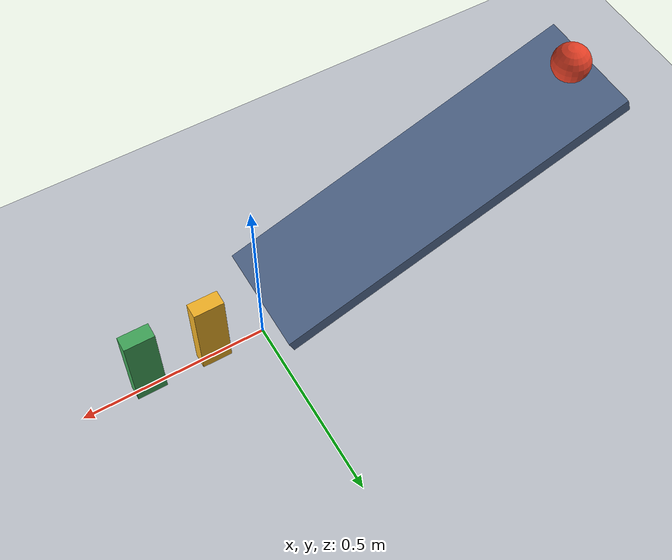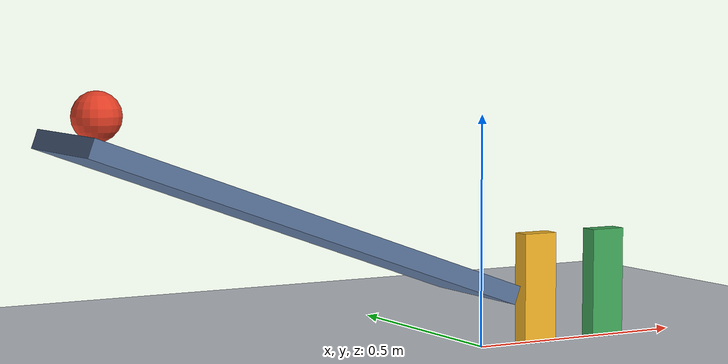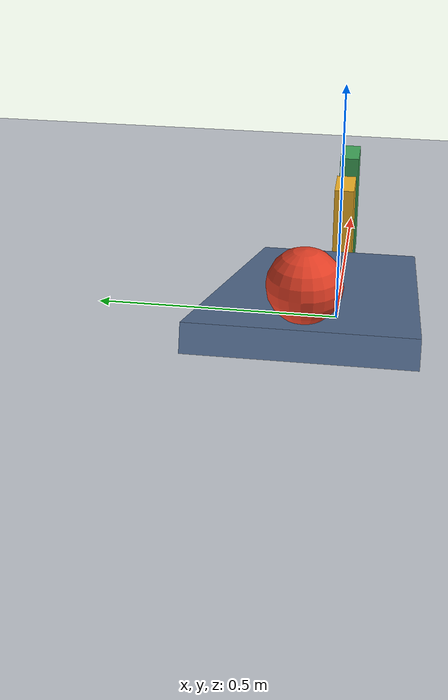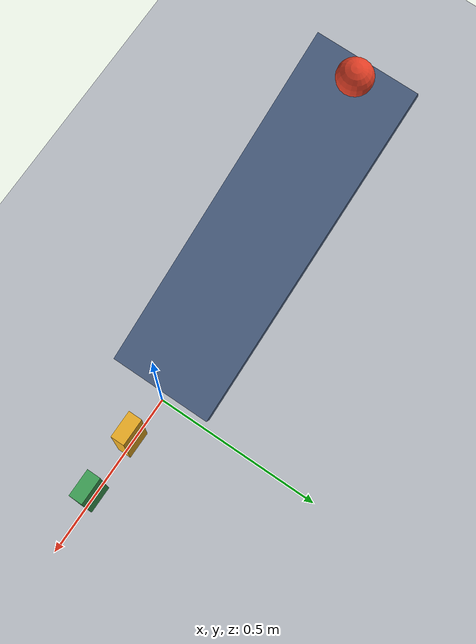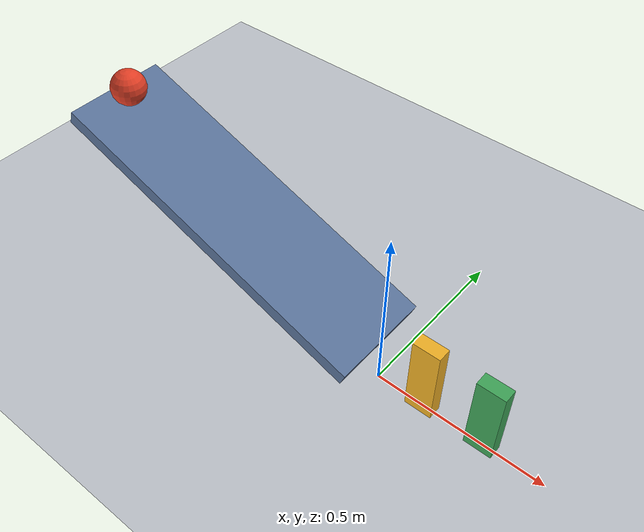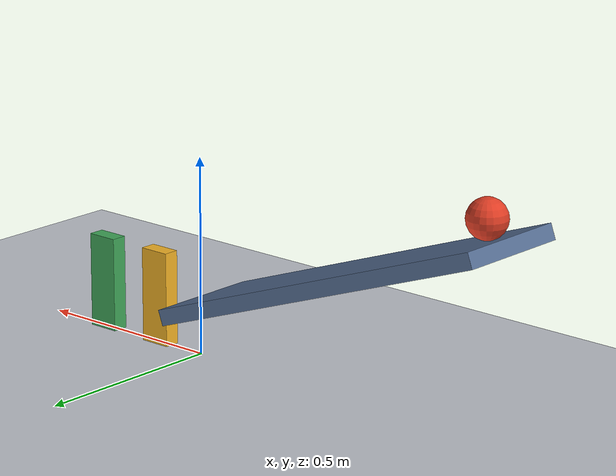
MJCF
<mujoco model="ramp_ball_domino_chain">
  <compiler angle="degree" autolimits="true"/>
  <option timestep="0.002" gravity="0 0 -9.81" integrator="implicitfast" solver="Newton" iterations="100" tolerance="1e-10" cone="elliptic"/>

  <!-- The contact damping ratio approximates restitution 0.05. -->
  <!-- There are no hinge or slide joints; all moving bodies have free joints. -->

  <worldbody>
    <light name="overhead" pos="-0.4 -1.0 3.0" dir="0 0 -1" diffuse="0.8 0.8 0.8"/>
    <geom name="floor" type="plane" pos="0 0 0" size="3 2 0.1" friction="0.70 0.005 0.0001" condim="3" solref="0.006 0.6901067" solimp="0.99 0.99 0.001 0.5 2" rgba="0.75 0.77 0.80 1"/>

    <!-- The ramp's upper surface is 1.00 m long and 0.30 m wide. -->
    <!-- Its low endpoint is (0, 0, 0.15); its inclination is 20 degrees. -->
    <body name="ramp1" pos="-0.4766867133 0 0.3022162192" euler="0 20 0">
      <geom name="ramp1_surface" type="box" size="0.50 0.15 0.02" friction="0.70 0.005 0.0001" condim="6" solref="0.006 0.6901067" solimp="0.99 0.99 0.001 0.5 2" rgba="0.35 0.45 0.60 1"/>
    </body>

    <!-- Initial tangency is 0.05 m inward from the ramp's high endpoint. -->
    <body name="ball1" pos="-0.8756069826 0 0.5219037672">
      <freejoint name="ball1_free"/>
      <geom name="ball1_sphere" type="sphere" size="0.05" mass="0.20" friction="0.70 0.005 0.0001" condim="6" solref="0.006 0.6901067" solimp="0.99 0.99 0.001 0.5 2" rgba="0.90 0.25 0.15 1"/>
    </body>

    <!-- Domino1's near face is 0.10 m beyond the ramp's low endpoint. -->
    <body name="domino1" pos="0.14 0 0.12">
      <freejoint name="domino1_free"/>
      <geom name="domino1_box" type="box" size="0.04 0.02 0.12" mass="0.25" friction="0.70 0.005 0.0001" condim="3" solref="0.006 0.6901067" solimp="0.99 0.99 0.001 0.5 2" rgba="0.95 0.70 0.15 1"/>
    </body>

    <!-- Domino centers are separated by 0.18 m in the downhill direction. -->
    <body name="domino2" pos="0.32 0 0.12">
      <freejoint name="domino2_free"/>
      <geom name="domino2_box" type="box" size="0.04 0.02 0.12" mass="0.25" friction="0.70 0.005 0.0001" condim="3" solref="0.006 0.6901067" solimp="0.99 0.99 0.001 0.5 2" rgba="0.25 0.65 0.35 1"/>
    </body>
  </worldbody>

  <contact>
    <!-- Floor-only rolling resistance dissipates residual ball motion. -->
    <!-- The first two friction entries retain tangential friction 0.70. -->
    <pair name="ball1_floor_contact" geom1="ball1_sphere" geom2="floor" condim="6" friction="0.70 0.70 0.005 0.010 0.010" solref="0.006 0.6901067" solimp="0.99 0.99 0.001 0.5 2"/>
  </contact>

  <keyframe>
    <key name="start" time="0" qpos="-0.8756069826 0 0.5219037672 1 0 0 0 0.14 0 0.12 1 0 0 0 0.32 0 0.12 1 0 0 0" qvel="0 0 0 0 0 0 0 0 0 0 0 0 0 0 0 0 0 0"/>
  </keyframe>
</mujoco>
